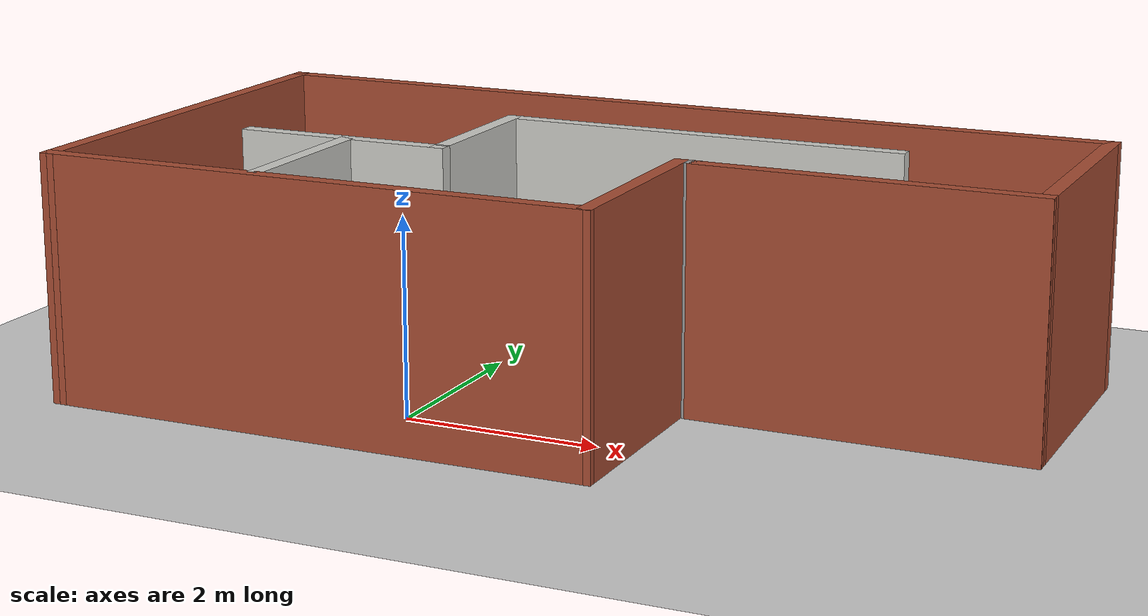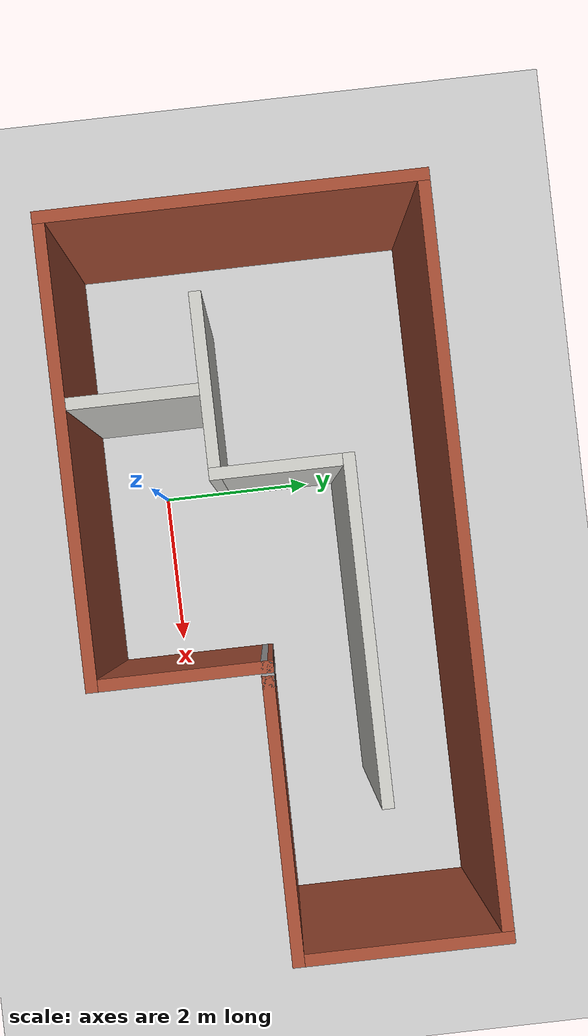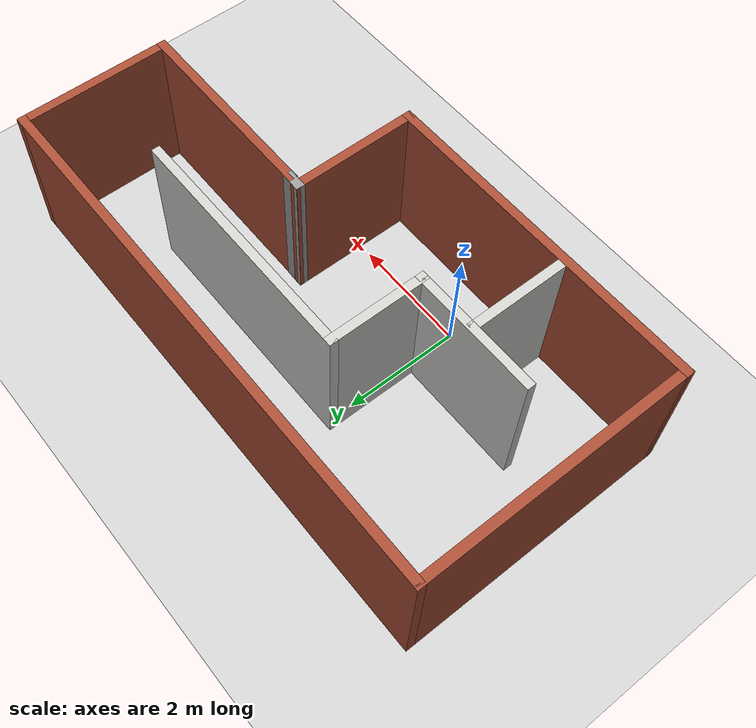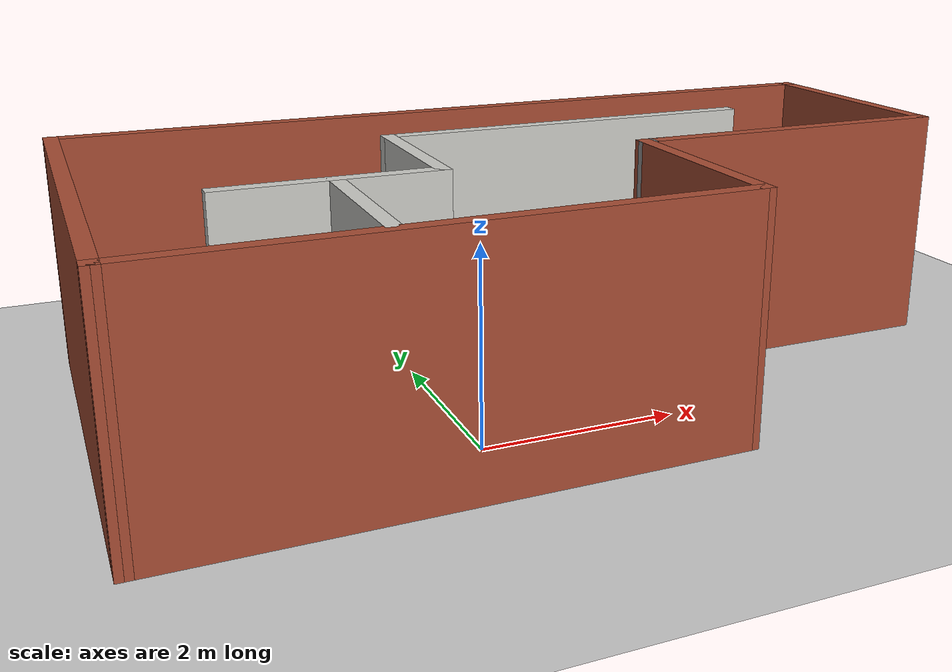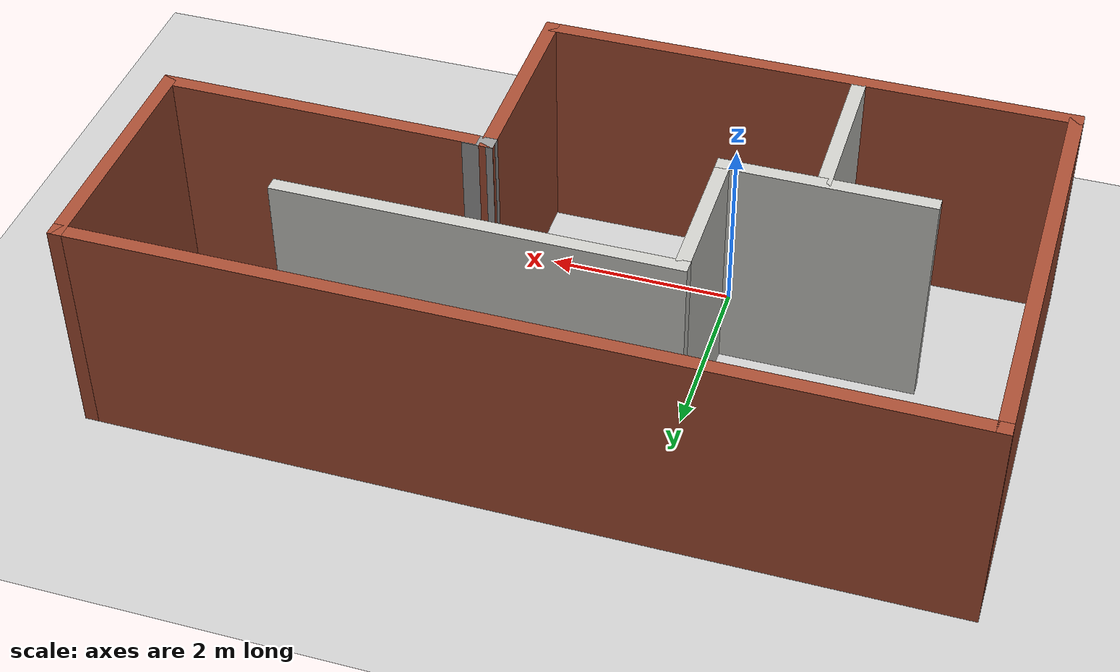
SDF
<sdf version="1.6">
 <world name="default">
  <light name="sun" type="directional">
   <pose>0 0 10 0 -0 0</pose>
   <diffuse>0.8 0.8 0.8 1</diffuse>
   <specular>0.2 0.2 0.2 1</specular>
   <attenuation>
    <range>1000</range>
    <constant>0.9</constant>
    <linear>0.01</linear>
    <quadratic>0.001</quadratic>
   </attenuation>
   <direction>-0.5 0.1 -0.9</direction>
  </light>
  <model name="ground_plane">
   <static>1</static>
   <link name="link">
    <collision name="collision">
     <geometry><plane><normal>0 0 1</normal><size>100 100</size></plane></geometry>
     <surface><friction><ode><mu>100</mu><mu2>50</mu2></ode></friction></surface>
    </collision>
    <visual name="visual">
     <cast_shadows>0</cast_shadows>
     <geometry><plane><normal>0 0 1</normal><size>100 100</size></plane></geometry>
     <material>
      <script><uri>file://media/materials/scripts/gazebo.material</uri><name>Gazebo/Grey</name></script>
     </material>
    </visual>
   </link>
  </model>
  <gravity>0 0 -9.8</gravity>
  <magnetic_field>6e-06 2.3e-05 -4.2e-05</magnetic_field>
  <atmosphere type="adiabatic"/>
  <physics name="default_physics" default="0" type="ode">
   <max_step_size>0.001</max_step_size>
   <real_time_factor>1</real_time_factor>
   <real_time_update_rate>1000</real_time_update_rate>
  </physics>
  <scene><ambient>0.4 0.4 0.4 1</ambient><background>0.7 0.7 0.7 1</background><shadows>1</shadows></scene>
  <spherical_coordinates>
   <surface_model>EARTH_WGS84</surface_model>
   <latitude_deg>0</latitude_deg>
   <longitude_deg>0</longitude_deg>
   <elevation>0</elevation>
   <heading_deg>0</heading_deg>
  </spherical_coordinates>
  <model name="Untitled">
   <pose>1.25274 1.37789 0 0 -0 0</pose>
   <link name="Wall_0">
    <collision name="Wall_0_Collision">
     <geometry><box><size>4.25 0.15 2.5</size></box></geometry>
     <pose>0 0 1.25 0 -0 0</pose>
    </collision>
    <visual name="Wall_0_Visual">
     <pose>0 0 1.25 0 -0 0</pose>
     <geometry><box><size>4.25 0.15 2.5</size></box></geometry>
     <material>
      <script><uri>file://media/materials/scripts/gazebo.material</uri><name>Gazebo/CeilingTiled</name></script>
      <ambient>0.760784 0.662745 0.627451 1</ambient>
     </material>
     <meta><layer>0</layer></meta>
    </visual>
    <pose>0.749922 1.05009 0 0 -0 3.14159</pose>
   </link>
   <link name="Wall_1">
    <collision name="Wall_1_Collision">
     <geometry><box><size>1.75 0.15 2.5</size></box></geometry>
     <pose>0 0 1.25 0 -0 0</pose>
    </collision>
    <visual name="Wall_1_Visual">
     <pose>0 0 1.25 0 -0 0</pose>
     <geometry><box><size>1.75 0.15 2.5</size></box></geometry>
     <material>
      <script><uri>file://media/materials/scripts/gazebo.material</uri><name>Gazebo/CeilingTiled</name></script>
      <ambient>0.760784 0.662745 0.627451 1</ambient>
     </material>
     <meta><layer>0</layer></meta>
    </visual>
    <pose>-1.30008 0.250086 0 0 0 -1.5708</pose>
   </link>
   <link name="Wall_12">
    <collision name="Wall_12_Collision">
     <geometry><box><size>4.75 0.15 2.5</size></box></geometry>
     <pose>0 0 1.25 0 -0 0</pose>
    </collision>
    <visual name="Wall_12_Visual">
     <pose>0 0 1.25 0 -0 0</pose>
     <geometry><box><size>4.75 0.15 2.5</size></box></geometry>
     <material>
      <script><uri>file://media/materials/scripts/gazebo.material</uri><name>Gazebo/Bricks</name></script>
      <ambient>1 1 1 1</ambient>
     </material>
     <meta><layer>0</layer></meta>
    </visual>
    <pose>-4.55008 8.6e-05 0 0 0 -1.5708</pose>
   </link>
   <link name="Wall_13">
    <collision name="Wall_13_Collision">
     <geometry><box><size>5.74383 0.15 2.5</size></box></geometry>
     <pose>0 0 1.25 0 -0 0</pose>
    </collision>
    <visual name="Wall_13_Visual">
     <pose>0 0 1.25 0 -0 0</pose>
     <geometry><box><size>5.74383 0.15 2.5</size></box></geometry>
     <material>
      <script><uri>file://media/materials/scripts/gazebo.material</uri><name>Gazebo/Bricks</name></script>
      <ambient>1 1 1 1</ambient>
     </material>
     <meta><layer>0</layer></meta>
    </visual>
    <pose>-1.75317 -2.2935 0 0 -0 0.002294</pose>
   </link>
   <link name="Wall_16">
    <collision name="Wall_16_Collision">
     <geometry><box><size>2.25 0.15 2.5</size></box></geometry>
     <pose>0 0 1.25 0 -0 0</pose>
    </collision>
    <visual name="Wall_16_Visual">
     <pose>0 0 1.25 0 -0 0</pose>
     <geometry><box><size>2.25 0.15 2.5</size></box></geometry>
     <material>
      <script><uri>file://media/materials/scripts/gazebo.material</uri><name>Gazebo/Bricks</name></script>
      <ambient>1 1 1 1</ambient>
     </material>
     <meta><layer>0</layer></meta>
    </visual>
    <pose>1.04374 -1.23708 0 0 -0 1.5708</pose>
   </link>
   <link name="Wall_18">
    <collision name="Wall_18_Collision">
     <geometry><box><size>0.332786 0.15 2.5</size></box></geometry>
     <pose>0 0 1.25 0 -0 0</pose>
    </collision>
    <visual name="Wall_18_Visual">
     <pose>0 0 1.25 0 -0 0</pose>
     <geometry><box><size>0.332786 0.15 2.5</size></box></geometry>
     <material>
      <script><uri>file://media/materials/scripts/gazebo.material</uri><name>Gazebo/Grey</name></script>
      <ambient>1 1 1 1</ambient>
     </material>
     <meta><layer>0</layer></meta>
    </visual>
    <pose>1.13499 -0.188524 0 0 0 -0.0158</pose>
   </link>
   <link name="Wall_2">
    <collision name="Wall_2_Collision">
     <geometry><box><size>2.25 0.15 2.5</size></box></geometry>
     <pose>0 0 1.25 0 -0 0</pose>
    </collision>
    <visual name="Wall_2_Visual">
     <pose>0 0 1.25 0 -0 0</pose>
     <geometry><box><size>2.25 0.15 2.5</size></box></geometry>
     <material>
      <script><uri>file://media/materials/scripts/gazebo.material</uri><name>Gazebo/CeilingTiled</name></script>
      <ambient>0.760784 0.662745 0.627451 1</ambient>
     </material>
     <meta><layer>0</layer></meta>
    </visual>
    <pose>-2.35008 -0.549914 0 0 -0 3.14159</pose>
   </link>
   <link name="Wall_20">
    <collision name="Wall_20_Collision">
     <geometry><box><size>1.75 0.15 2.5</size></box></geometry>
     <pose>0 0 1.25 0 -0 0</pose>
    </collision>
    <visual name="Wall_20_Visual">
     <pose>0 0 1.25 0 -0 0</pose>
     <geometry><box><size>1.75 0.15 2.5</size></box></geometry>
     <material>
      <script><uri>file://media/materials/scripts/gazebo.material</uri><name>Gazebo/CeilingTiled</name></script>
      <ambient>0.760784 0.662745 0.627451 1</ambient>
     </material>
     <meta><layer>0</layer></meta>
    </visual>
    <pose>-2.31405 -1.39316 0 0 0 -1.5708</pose>
   </link>
   <link name="Wall_6">
    <collision name="Wall_6_Collision">
     <geometry><box><size>3.47372 0.15 2.5</size></box></geometry>
     <pose>0 0 1.25 0 -0 0</pose>
    </collision>
    <visual name="Wall_6_Visual">
     <pose>0 0 1.25 0 -0 0</pose>
     <geometry><box><size>3.47372 0.15 2.5</size></box></geometry>
     <material>
      <script><uri>file://media/materials/scripts/gazebo.material</uri><name>Gazebo/Bricks</name></script>
      <ambient>1 1 1 1</ambient>
     </material>
     <meta><layer>0</layer></meta>
    </visual>
    <pose>2.88808 -0.204587 0 0 0 -0.004383</pose>
   </link>
   <link name="Wall_7">
    <collision name="Wall_7_Collision">
     <geometry><box><size>2.65462 0.15 2.5</size></box></geometry>
     <pose>0 0 1.25 0 -0 0</pose>
    </collision>
    <visual name="Wall_7_Visual">
     <pose>0 0 1.25 0 -0 0</pose>
     <geometry><box><size>2.65462 0.15 2.5</size></box></geometry>
     <material>
      <script><uri>file://media/materials/scripts/gazebo.material</uri><name>Gazebo/Bricks</name></script>
      <ambient>1 1 1 1</ambient>
     </material>
     <meta><layer>0</layer></meta>
    </visual>
    <pose>4.54992 1.04778 0 0 -0 1.5708</pose>
   </link>
   <link name="Wall_8">
    <collision name="Wall_8_Collision">
     <geometry><box><size>9.25 0.15 2.5</size></box></geometry>
     <pose>0 0 1.25 0 -0 0</pose>
    </collision>
    <visual name="Wall_8_Visual">
     <pose>0 0 1.25 0 -0 0</pose>
     <geometry><box><size>9.25 0.15 2.5</size></box></geometry>
     <material>
      <script><uri>file://media/materials/scripts/gazebo.material</uri><name>Gazebo/Bricks</name></script>
      <ambient>1 1 1 1</ambient>
     </material>
     <meta><layer>0</layer></meta>
    </visual>
    <pose>-7.8e-05 2.30009 0 0 -0 3.14159</pose>
   </link>
   <static>1</static>
  </model>
 </world>
</sdf>
